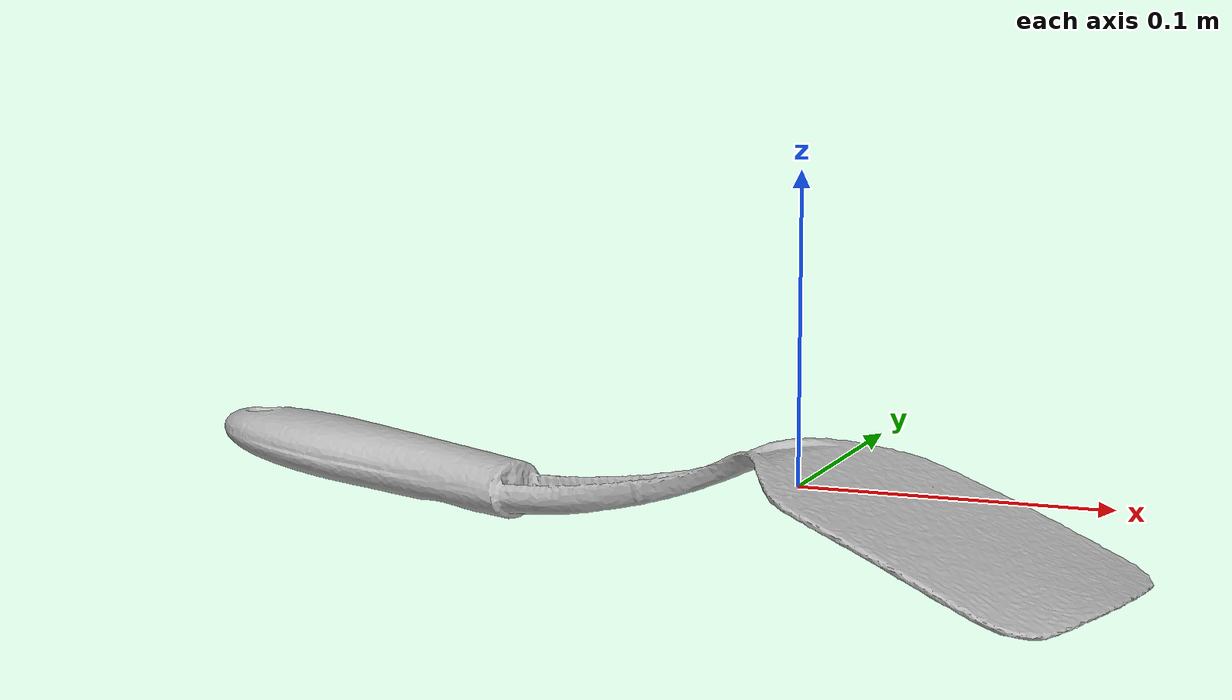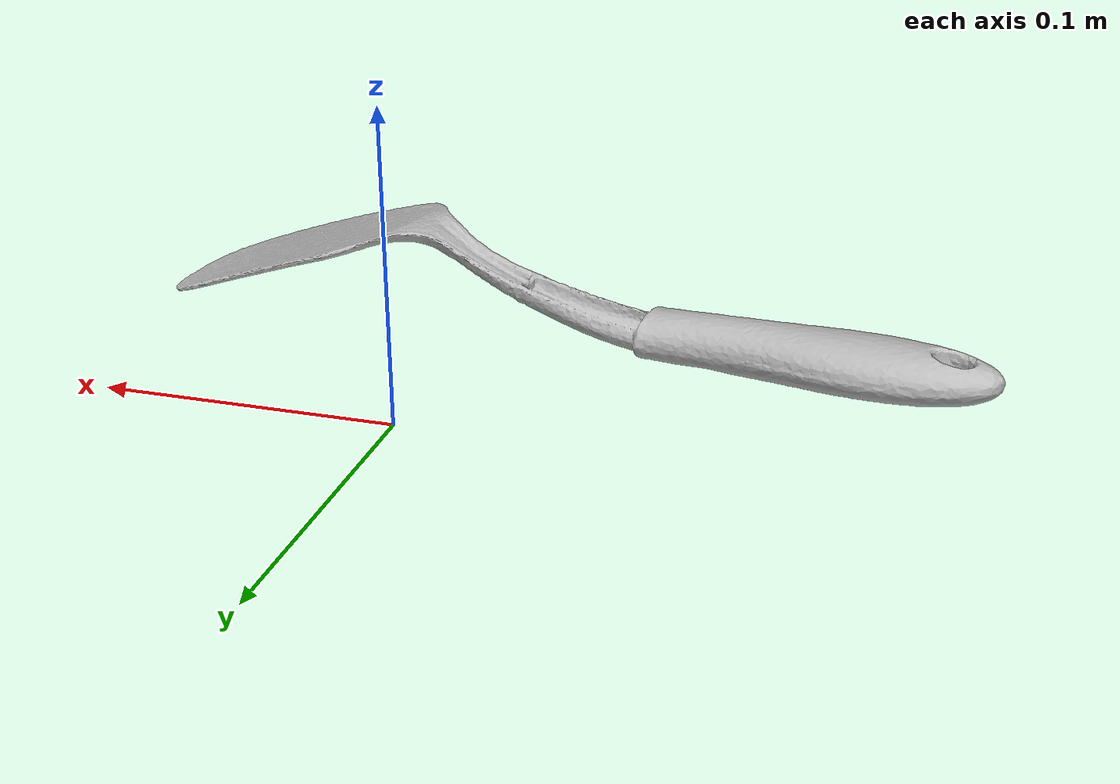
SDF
<?xml version='1.0'?>
<sdf version="1.4">
  <model name="spatula">
    <static>false</static>
    <link name="link">
      <inertial>
        <pose>-0.04658104382034089 -0.07860574843636466 0.013189187861051136 -2.331561210495374 -1.5669207168488435 2.066380068208656</pose>
        <mass>6.713356277814285e-05</mass>
        <inertia>
          <ixx>6.47949701547489e-07</ixx>
          <ixy>-1.0427478650063788e-24</ixy>
          <ixz>-3.292877454104162e-25</ixz>
          <iyy>6.389283657144585e-07</iyy>
          <iyz>5.903967889437602e-23</iyz>
          <izz>1.5038319318788967e-08</izz>
        </inertia>
      </inertial>
      <collision name="collision">
        <geometry>
          <mesh>
            <!-- Use a downsampled mesh for collisions -->
            <uri>model://033_spatula/google_16k/033_spatula.obj</uri>
            </mesh>
        </geometry>
        <surface>
          <friction>
            <ode>
              <mu>0.9</mu>
              <mu2>0.9</mu2>
            </ode>
          </friction>
          <contact>
            <ode>
              <kp>1000000000000.0</kp>
              <kd>1</kd>
              <min_depth>0.0001</min_depth>
              <max_vel>0.01</max_vel>
            </ode>
          </contact>
          <bounce>
            <restitution_coefficient>0.1</restitution_coefficient>
            <threshold>1000.0</threshold>
          </bounce>
        </surface>
      </collision>
      <visual name="visual">
        <geometry>
          <mesh>
            <uri>model://033_spatula/google_16k/033_spatula.dae</uri>
            </mesh>
        </geometry>
      </visual>
    </link>
  </model>
</sdf>
